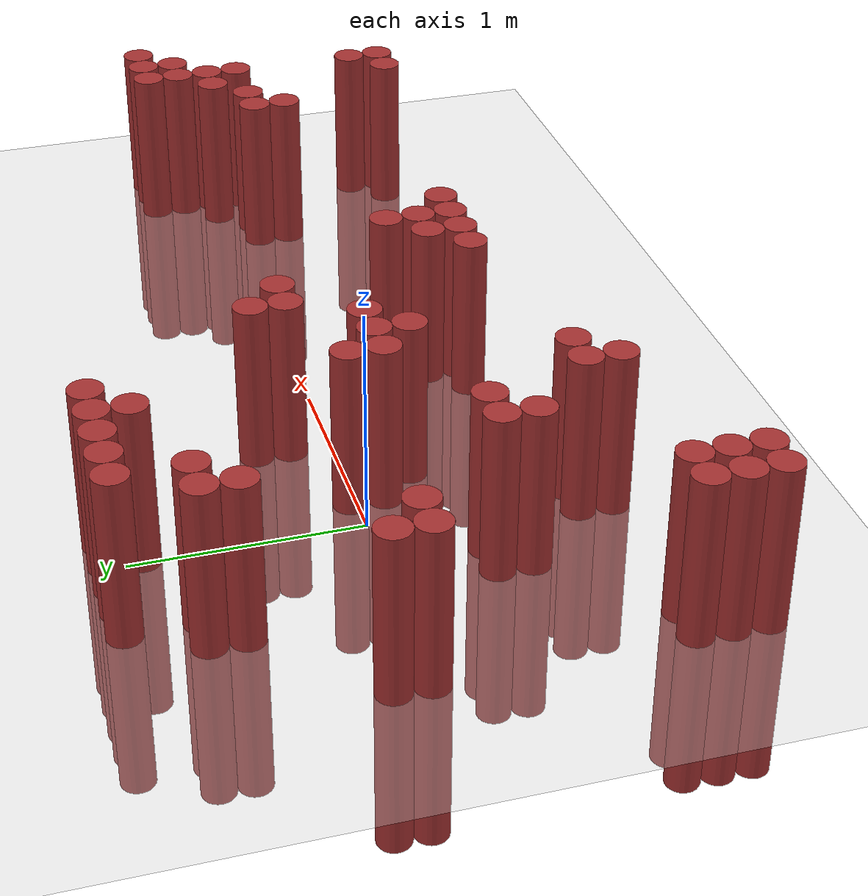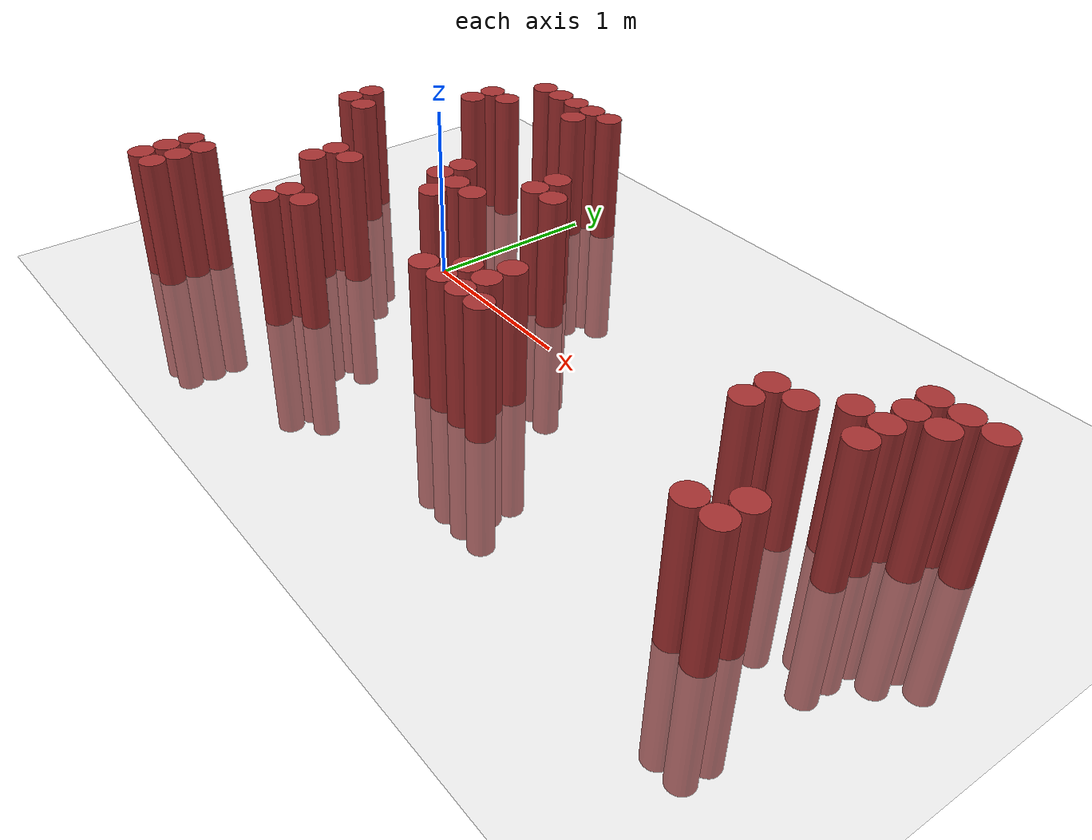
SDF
<sdf version="1.6">
 <world name="default">
  <model name="ground_plane">
   <static>1</static>
   <link name="link">
    <collision name="collision">
     <geometry><plane><normal>0 0 1</normal><size>100 100</size></plane></geometry>
     <surface><friction><ode><mu>100</mu><mu2>50</mu2></ode></friction></surface>
    </collision>
    <visual name="visual">
     <cast_shadows>0</cast_shadows>
     <geometry><plane><normal>0 0 1</normal><size>100 100</size></plane></geometry>
     <material>
      <script><uri>file://media/materials/scripts/gazebo.material</uri><name>Gazebo/Grey</name></script>
     </material>
    </visual>
   </link>
  </model>
  <model name="unit_cylinder_342">
   <static>1</static>
   <pose>-1.025000 -1.325000 0.000000 0.000000 0.000000 0.000000</pose>
   <link name="link">
    <inertial>
     <mass>1</mass>
     <inertia><ixx>0.145833</ixx><ixy>0</ixy><ixz>0</ixz><iyy>0.145833</iyy><iyz>0</iyz><izz>0.125</izz></inertia>
    </inertial>
    <collision name="collision">
     <geometry><cylinder><radius>0.075000</radius><length>1.5</length></cylinder></geometry>
    </collision>
    <visual name="visual">
     <geometry><cylinder><radius>0.075000</radius><length>1.5</length></cylinder></geometry>
     <material>
      <ambient>0.648000 0.192000 0.192000 1</ambient>
      <diffuse>0.648000 0.192000 0.192000 1</diffuse>
     </material>
     <material>
      <script><name>Gazebo/Grey</name><uri>file://media/materials/scripts/gazebo.material</uri></script>
     </material>
    </visual>
   </link>
  </model>
  <model name="unit_cylinder_343">
   <static>1</static>
   <pose>-1.025000 -1.175000 0.000000 0.000000 0.000000 0.000000</pose>
   <link name="link">
    <inertial>
     <mass>1</mass>
     <inertia><ixx>0.145833</ixx><ixy>0</ixy><ixz>0</ixz><iyy>0.145833</iyy><iyz>0</iyz><izz>0.125</izz></inertia>
    </inertial>
    <collision name="collision">
     <geometry><cylinder><radius>0.075000</radius><length>1.5</length></cylinder></geometry>
    </collision>
    <visual name="visual">
     <geometry><cylinder><radius>0.075000</radius><length>1.5</length></cylinder></geometry>
     <material>
      <ambient>0.648000 0.192000 0.192000 1</ambient>
      <diffuse>0.648000 0.192000 0.192000 1</diffuse>
     </material>
     <material>
      <script><name>Gazebo/Grey</name><uri>file://media/materials/scripts/gazebo.material</uri></script>
     </material>
    </visual>
   </link>
  </model>
  <model name="unit_cylinder_344">
   <static>1</static>
   <pose>-1.025000 -1.025000 0.000000 0.000000 0.000000 0.000000</pose>
   <link name="link">
    <inertial>
     <mass>1</mass>
     <inertia><ixx>0.145833</ixx><ixy>0</ixy><ixz>0</ixz><iyy>0.145833</iyy><iyz>0</iyz><izz>0.125</izz></inertia>
    </inertial>
    <collision name="collision">
     <geometry><cylinder><radius>0.075000</radius><length>1.5</length></cylinder></geometry>
    </collision>
    <visual name="visual">
     <geometry><cylinder><radius>0.075000</radius><length>1.5</length></cylinder></geometry>
     <material>
      <ambient>0.648000 0.192000 0.192000 1</ambient>
      <diffuse>0.648000 0.192000 0.192000 1</diffuse>
     </material>
     <material>
      <script><name>Gazebo/Grey</name><uri>file://media/materials/scripts/gazebo.material</uri></script>
     </material>
    </visual>
   </link>
  </model>
  <model name="unit_cylinder_345">
   <static>1</static>
   <pose>-1.025000 0.025000 0.000000 0.000000 0.000000 0.000000</pose>
   <link name="link">
    <inertial>
     <mass>1</mass>
     <inertia><ixx>0.145833</ixx><ixy>0</ixy><ixz>0</ixz><iyy>0.145833</iyy><iyz>0</iyz><izz>0.125</izz></inertia>
    </inertial>
    <collision name="collision">
     <geometry><cylinder><radius>0.075000</radius><length>1.5</length></cylinder></geometry>
    </collision>
    <visual name="visual">
     <geometry><cylinder><radius>0.075000</radius><length>1.5</length></cylinder></geometry>
     <material>
      <ambient>0.648000 0.192000 0.192000 1</ambient>
      <diffuse>0.648000 0.192000 0.192000 1</diffuse>
     </material>
     <material>
      <script><name>Gazebo/Grey</name><uri>file://media/materials/scripts/gazebo.material</uri></script>
     </material>
    </visual>
   </link>
  </model>
  <model name="unit_cylinder_346">
   <static>1</static>
   <pose>-1.025000 0.175000 0.000000 0.000000 0.000000 0.000000</pose>
   <link name="link">
    <inertial>
     <mass>1</mass>
     <inertia><ixx>0.145833</ixx><ixy>0</ixy><ixz>0</ixz><iyy>0.145833</iyy><iyz>0</iyz><izz>0.125</izz></inertia>
    </inertial>
    <collision name="collision">
     <geometry><cylinder><radius>0.075000</radius><length>1.5</length></cylinder></geometry>
    </collision>
    <visual name="visual">
     <geometry><cylinder><radius>0.075000</radius><length>1.5</length></cylinder></geometry>
     <material>
      <ambient>0.648000 0.192000 0.192000 1</ambient>
      <diffuse>0.648000 0.192000 0.192000 1</diffuse>
     </material>
     <material>
      <script><name>Gazebo/Grey</name><uri>file://media/materials/scripts/gazebo.material</uri></script>
     </material>
    </visual>
   </link>
  </model>
  <model name="unit_cylinder_349">
   <static>1</static>
   <pose>-0.875000 -1.325000 0.000000 0.000000 0.000000 0.000000</pose>
   <link name="link">
    <inertial>
     <mass>1</mass>
     <inertia><ixx>0.145833</ixx><ixy>0</ixy><ixz>0</ixz><iyy>0.145833</iyy><iyz>0</iyz><izz>0.125</izz></inertia>
    </inertial>
    <collision name="collision">
     <geometry><cylinder><radius>0.075000</radius><length>1.5</length></cylinder></geometry>
    </collision>
    <visual name="visual">
     <geometry><cylinder><radius>0.075000</radius><length>1.5</length></cylinder></geometry>
     <material>
      <ambient>0.648000 0.192000 0.192000 1</ambient>
      <diffuse>0.648000 0.192000 0.192000 1</diffuse>
     </material>
     <material>
      <script><name>Gazebo/Grey</name><uri>file://media/materials/scripts/gazebo.material</uri></script>
     </material>
    </visual>
   </link>
  </model>
  <model name="unit_cylinder_350">
   <static>1</static>
   <pose>-0.875000 -1.175000 0.000000 0.000000 0.000000 0.000000</pose>
   <link name="link">
    <inertial>
     <mass>1</mass>
     <inertia><ixx>0.145833</ixx><ixy>0</ixy><ixz>0</ixz><iyy>0.145833</iyy><iyz>0</iyz><izz>0.125</izz></inertia>
    </inertial>
    <collision name="collision">
     <geometry><cylinder><radius>0.075000</radius><length>1.5</length></cylinder></geometry>
    </collision>
    <visual name="visual">
     <geometry><cylinder><radius>0.075000</radius><length>1.5</length></cylinder></geometry>
     <material>
      <ambient>0.648000 0.192000 0.192000 1</ambient>
      <diffuse>0.648000 0.192000 0.192000 1</diffuse>
     </material>
     <material>
      <script><name>Gazebo/Grey</name><uri>file://media/materials/scripts/gazebo.material</uri></script>
     </material>
    </visual>
   </link>
  </model>
  <model name="unit_cylinder_351">
   <static>1</static>
   <pose>-0.875000 -1.025000 0.000000 0.000000 0.000000 0.000000</pose>
   <link name="link">
    <inertial>
     <mass>1</mass>
     <inertia><ixx>0.145833</ixx><ixy>0</ixy><ixz>0</ixz><iyy>0.145833</iyy><iyz>0</iyz><izz>0.125</izz></inertia>
    </inertial>
    <collision name="collision">
     <geometry><cylinder><radius>0.075000</radius><length>1.5</length></cylinder></geometry>
    </collision>
    <visual name="visual">
     <geometry><cylinder><radius>0.075000</radius><length>1.5</length></cylinder></geometry>
     <material>
      <ambient>0.648000 0.192000 0.192000 1</ambient>
      <diffuse>0.648000 0.192000 0.192000 1</diffuse>
     </material>
     <material>
      <script><name>Gazebo/Grey</name><uri>file://media/materials/scripts/gazebo.material</uri></script>
     </material>
    </visual>
   </link>
  </model>
  <model name="unit_cylinder_352">
   <static>1</static>
   <pose>-0.875000 0.025000 0.000000 0.000000 0.000000 0.000000</pose>
   <link name="link">
    <inertial>
     <mass>1</mass>
     <inertia><ixx>0.145833</ixx><ixy>0</ixy><ixz>0</ixz><iyy>0.145833</iyy><iyz>0</iyz><izz>0.125</izz></inertia>
    </inertial>
    <collision name="collision">
     <geometry><cylinder><radius>0.075000</radius><length>1.5</length></cylinder></geometry>
    </collision>
    <visual name="visual">
     <geometry><cylinder><radius>0.075000</radius><length>1.5</length></cylinder></geometry>
     <material>
      <ambient>0.648000 0.192000 0.192000 1</ambient>
      <diffuse>0.648000 0.192000 0.192000 1</diffuse>
     </material>
     <material>
      <script><name>Gazebo/Grey</name><uri>file://media/materials/scripts/gazebo.material</uri></script>
     </material>
    </visual>
   </link>
  </model>
  <model name="unit_cylinder_357">
   <static>1</static>
   <pose>-0.575000 0.625000 0.000000 0.000000 0.000000 0.000000</pose>
   <link name="link">
    <inertial>
     <mass>1</mass>
     <inertia><ixx>0.145833</ixx><ixy>0</ixy><ixz>0</ixz><iyy>0.145833</iyy><iyz>0</iyz><izz>0.125</izz></inertia>
    </inertial>
    <collision name="collision">
     <geometry><cylinder><radius>0.075000</radius><length>1.5</length></cylinder></geometry>
    </collision>
    <visual name="visual">
     <geometry><cylinder><radius>0.075000</radius><length>1.5</length></cylinder></geometry>
     <material>
      <ambient>0.648000 0.192000 0.192000 1</ambient>
      <diffuse>0.648000 0.192000 0.192000 1</diffuse>
     </material>
     <material>
      <script><name>Gazebo/Grey</name><uri>file://media/materials/scripts/gazebo.material</uri></script>
     </material>
    </visual>
   </link>
  </model>
  <model name="unit_cylinder_358">
   <static>1</static>
   <pose>-0.575000 0.775000 0.000000 0.000000 0.000000 0.000000</pose>
   <link name="link">
    <inertial>
     <mass>1</mass>
     <inertia><ixx>0.145833</ixx><ixy>0</ixy><ixz>0</ixz><iyy>0.145833</iyy><iyz>0</iyz><izz>0.125</izz></inertia>
    </inertial>
    <collision name="collision">
     <geometry><cylinder><radius>0.075000</radius><length>1.5</length></cylinder></geometry>
    </collision>
    <visual name="visual">
     <geometry><cylinder><radius>0.075000</radius><length>1.5</length></cylinder></geometry>
     <material>
      <ambient>0.648000 0.192000 0.192000 1</ambient>
      <diffuse>0.648000 0.192000 0.192000 1</diffuse>
     </material>
     <material>
      <script><name>Gazebo/Grey</name><uri>file://media/materials/scripts/gazebo.material</uri></script>
     </material>
    </visual>
   </link>
  </model>
  <model name="unit_cylinder_363">
   <static>1</static>
   <pose>-0.425000 -0.575000 0.000000 0.000000 0.000000 0.000000</pose>
   <link name="link">
    <inertial>
     <mass>1</mass>
     <inertia><ixx>0.145833</ixx><ixy>0</ixy><ixz>0</ixz><iyy>0.145833</iyy><iyz>0</iyz><izz>0.125</izz></inertia>
    </inertial>
    <collision name="collision">
     <geometry><cylinder><radius>0.075000</radius><length>1.5</length></cylinder></geometry>
    </collision>
    <visual name="visual">
     <geometry><cylinder><radius>0.075000</radius><length>1.5</length></cylinder></geometry>
     <material>
      <ambient>0.648000 0.192000 0.192000 1</ambient>
      <diffuse>0.648000 0.192000 0.192000 1</diffuse>
     </material>
     <material>
      <script><name>Gazebo/Grey</name><uri>file://media/materials/scripts/gazebo.material</uri></script>
     </material>
    </visual>
   </link>
  </model>
  <model name="unit_cylinder_364">
   <static>1</static>
   <pose>-0.425000 -0.425000 0.000000 0.000000 0.000000 0.000000</pose>
   <link name="link">
    <inertial>
     <mass>1</mass>
     <inertia><ixx>0.145833</ixx><ixy>0</ixy><ixz>0</ixz><iyy>0.145833</iyy><iyz>0</iyz><izz>0.125</izz></inertia>
    </inertial>
    <collision name="collision">
     <geometry><cylinder><radius>0.075000</radius><length>1.5</length></cylinder></geometry>
    </collision>
    <visual name="visual">
     <geometry><cylinder><radius>0.075000</radius><length>1.5</length></cylinder></geometry>
     <material>
      <ambient>0.648000 0.192000 0.192000 1</ambient>
      <diffuse>0.648000 0.192000 0.192000 1</diffuse>
     </material>
     <material>
      <script><name>Gazebo/Grey</name><uri>file://media/materials/scripts/gazebo.material</uri></script>
     </material>
    </visual>
   </link>
  </model>
  <model name="unit_cylinder_365">
   <static>1</static>
   <pose>-0.425000 0.775000 0.000000 0.000000 0.000000 0.000000</pose>
   <link name="link">
    <inertial>
     <mass>1</mass>
     <inertia><ixx>0.145833</ixx><ixy>0</ixy><ixz>0</ixz><iyy>0.145833</iyy><iyz>0</iyz><izz>0.125</izz></inertia>
    </inertial>
    <collision name="collision">
     <geometry><cylinder><radius>0.075000</radius><length>1.5</length></cylinder></geometry>
    </collision>
    <visual name="visual">
     <geometry><cylinder><radius>0.075000</radius><length>1.5</length></cylinder></geometry>
     <material>
      <ambient>0.648000 0.192000 0.192000 1</ambient>
      <diffuse>0.648000 0.192000 0.192000 1</diffuse>
     </material>
     <material>
      <script><name>Gazebo/Grey</name><uri>file://media/materials/scripts/gazebo.material</uri></script>
     </material>
    </visual>
   </link>
  </model>
  <model name="unit_cylinder_366">
   <static>1</static>
   <pose>-0.425000 1.075000 0.000000 0.000000 0.000000 0.000000</pose>
   <link name="link">
    <inertial>
     <mass>1</mass>
     <inertia><ixx>0.145833</ixx><ixy>0</ixy><ixz>0</ixz><iyy>0.145833</iyy><iyz>0</iyz><izz>0.125</izz></inertia>
    </inertial>
    <collision name="collision">
     <geometry><cylinder><radius>0.075000</radius><length>1.5</length></cylinder></geometry>
    </collision>
    <visual name="visual">
     <geometry><cylinder><radius>0.075000</radius><length>1.5</length></cylinder></geometry>
     <material>
      <ambient>0.648000 0.192000 0.192000 1</ambient>
      <diffuse>0.648000 0.192000 0.192000 1</diffuse>
     </material>
     <material>
      <script><name>Gazebo/Grey</name><uri>file://media/materials/scripts/gazebo.material</uri></script>
     </material>
    </visual>
   </link>
  </model>
  <model name="unit_cylinder_376">
   <static>1</static>
   <pose>-0.275000 -0.425000 0.000000 0.000000 0.000000 0.000000</pose>
   <link name="link">
    <inertial>
     <mass>1</mass>
     <inertia><ixx>0.145833</ixx><ixy>0</ixy><ixz>0</ixz><iyy>0.145833</iyy><iyz>0</iyz><izz>0.125</izz></inertia>
    </inertial>
    <collision name="collision">
     <geometry><cylinder><radius>0.075000</radius><length>1.5</length></cylinder></geometry>
    </collision>
    <visual name="visual">
     <geometry><cylinder><radius>0.075000</radius><length>1.5</length></cylinder></geometry>
     <material>
      <ambient>0.648000 0.192000 0.192000 1</ambient>
      <diffuse>0.648000 0.192000 0.192000 1</diffuse>
     </material>
     <material>
      <script><name>Gazebo/Grey</name><uri>file://media/materials/scripts/gazebo.material</uri></script>
     </material>
    </visual>
   </link>
  </model>
  <model name="unit_cylinder_377">
   <static>1</static>
   <pose>-0.275000 1.075000 0.000000 0.000000 0.000000 0.000000</pose>
   <link name="link">
    <inertial>
     <mass>1</mass>
     <inertia><ixx>0.145833</ixx><ixy>0</ixy><ixz>0</ixz><iyy>0.145833</iyy><iyz>0</iyz><izz>0.125</izz></inertia>
    </inertial>
    <collision name="collision">
     <geometry><cylinder><radius>0.075000</radius><length>1.5</length></cylinder></geometry>
    </collision>
    <visual name="visual">
     <geometry><cylinder><radius>0.075000</radius><length>1.5</length></cylinder></geometry>
     <material>
      <ambient>0.648000 0.192000 0.192000 1</ambient>
      <diffuse>0.648000 0.192000 0.192000 1</diffuse>
     </material>
     <material>
      <script><name>Gazebo/Grey</name><uri>file://media/materials/scripts/gazebo.material</uri></script>
     </material>
    </visual>
   </link>
  </model>
  <model name="unit_cylinder_384">
   <static>1</static>
   <pose>-0.125000 -1.025000 0.000000 0.000000 0.000000 0.000000</pose>
   <link name="link">
    <inertial>
     <mass>1</mass>
     <inertia><ixx>0.145833</ixx><ixy>0</ixy><ixz>0</ixz><iyy>0.145833</iyy><iyz>0</iyz><izz>0.125</izz></inertia>
    </inertial>
    <collision name="collision">
     <geometry><cylinder><radius>0.075000</radius><length>1.5</length></cylinder></geometry>
    </collision>
    <visual name="visual">
     <geometry><cylinder><radius>0.075000</radius><length>1.5</length></cylinder></geometry>
     <material>
      <ambient>0.648000 0.192000 0.192000 1</ambient>
      <diffuse>0.648000 0.192000 0.192000 1</diffuse>
     </material>
     <material>
      <script><name>Gazebo/Grey</name><uri>file://media/materials/scripts/gazebo.material</uri></script>
     </material>
    </visual>
   </link>
  </model>
  <model name="unit_cylinder_385">
   <static>1</static>
   <pose>-0.125000 -0.875000 0.000000 0.000000 0.000000 0.000000</pose>
   <link name="link">
    <inertial>
     <mass>1</mass>
     <inertia><ixx>0.145833</ixx><ixy>0</ixy><ixz>0</ixz><iyy>0.145833</iyy><iyz>0</iyz><izz>0.125</izz></inertia>
    </inertial>
    <collision name="collision">
     <geometry><cylinder><radius>0.075000</radius><length>1.5</length></cylinder></geometry>
    </collision>
    <visual name="visual">
     <geometry><cylinder><radius>0.075000</radius><length>1.5</length></cylinder></geometry>
     <material>
      <ambient>0.648000 0.192000 0.192000 1</ambient>
      <diffuse>0.648000 0.192000 0.192000 1</diffuse>
     </material>
     <material>
      <script><name>Gazebo/Grey</name><uri>file://media/materials/scripts/gazebo.material</uri></script>
     </material>
    </visual>
   </link>
  </model>
  <model name="unit_cylinder_386">
   <static>1</static>
   <pose>-0.125000 1.075000 0.000000 0.000000 0.000000 0.000000</pose>
   <link name="link">
    <inertial>
     <mass>1</mass>
     <inertia><ixx>0.145833</ixx><ixy>0</ixy><ixz>0</ixz><iyy>0.145833</iyy><iyz>0</iyz><izz>0.125</izz></inertia>
    </inertial>
    <collision name="collision">
     <geometry><cylinder><radius>0.075000</radius><length>1.5</length></cylinder></geometry>
    </collision>
    <visual name="visual">
     <geometry><cylinder><radius>0.075000</radius><length>1.5</length></cylinder></geometry>
     <material>
      <ambient>0.648000 0.192000 0.192000 1</ambient>
      <diffuse>0.648000 0.192000 0.192000 1</diffuse>
     </material>
     <material>
      <script><name>Gazebo/Grey</name><uri>file://media/materials/scripts/gazebo.material</uri></script>
     </material>
    </visual>
   </link>
  </model>
  <model name="unit_cylinder_390">
   <static>1</static>
   <pose>0.025000 -0.875000 0.000000 0.000000 0.000000 0.000000</pose>
   <link name="link">
    <inertial>
     <mass>1</mass>
     <inertia><ixx>0.145833</ixx><ixy>0</ixy><ixz>0</ixz><iyy>0.145833</iyy><iyz>0</iyz><izz>0.125</izz></inertia>
    </inertial>
    <collision name="collision">
     <geometry><cylinder><radius>0.075000</radius><length>1.5</length></cylinder></geometry>
    </collision>
    <visual name="visual">
     <geometry><cylinder><radius>0.075000</radius><length>1.5</length></cylinder></geometry>
     <material>
      <ambient>0.648000 0.192000 0.192000 1</ambient>
      <diffuse>0.648000 0.192000 0.192000 1</diffuse>
     </material>
     <material>
      <script><name>Gazebo/Grey</name><uri>file://media/materials/scripts/gazebo.material</uri></script>
     </material>
    </visual>
   </link>
  </model>
  <model name="unit_cylinder_391">
   <static>1</static>
   <pose>0.025000 0.925000 0.000000 0.000000 0.000000 0.000000</pose>
   <link name="link">
    <inertial>
     <mass>1</mass>
     <inertia><ixx>0.145833</ixx><ixy>0</ixy><ixz>0</ixz><iyy>0.145833</iyy><iyz>0</iyz><izz>0.125</izz></inertia>
    </inertial>
    <collision name="collision">
     <geometry><cylinder><radius>0.075000</radius><length>1.5</length></cylinder></geometry>
    </collision>
    <visual name="visual">
     <geometry><cylinder><radius>0.075000</radius><length>1.5</length></cylinder></geometry>
     <material>
      <ambient>0.648000 0.192000 0.192000 1</ambient>
      <diffuse>0.648000 0.192000 0.192000 1</diffuse>
     </material>
     <material>
      <script><name>Gazebo/Grey</name><uri>file://media/materials/scripts/gazebo.material</uri></script>
     </material>
    </visual>
   </link>
  </model>
  <model name="unit_cylinder_392">
   <static>1</static>
   <pose>0.025000 1.075000 0.000000 0.000000 0.000000 0.000000</pose>
   <link name="link">
    <inertial>
     <mass>1</mass>
     <inertia><ixx>0.145833</ixx><ixy>0</ixy><ixz>0</ixz><iyy>0.145833</iyy><iyz>0</iyz><izz>0.125</izz></inertia>
    </inertial>
    <collision name="collision">
     <geometry><cylinder><radius>0.075000</radius><length>1.5</length></cylinder></geometry>
    </collision>
    <visual name="visual">
     <geometry><cylinder><radius>0.075000</radius><length>1.5</length></cylinder></geometry>
     <material>
      <ambient>0.648000 0.192000 0.192000 1</ambient>
      <diffuse>0.648000 0.192000 0.192000 1</diffuse>
     </material>
     <material>
      <script><name>Gazebo/Grey</name><uri>file://media/materials/scripts/gazebo.material</uri></script>
     </material>
    </visual>
   </link>
  </model>
  <model name="unit_cylinder_396">
   <static>1</static>
   <pose>0.175000 -0.125000 0.000000 0.000000 0.000000 0.000000</pose>
   <link name="link">
    <inertial>
     <mass>1</mass>
     <inertia><ixx>0.145833</ixx><ixy>0</ixy><ixz>0</ixz><iyy>0.145833</iyy><iyz>0</iyz><izz>0.125</izz></inertia>
    </inertial>
    <collision name="collision">
     <geometry><cylinder><radius>0.075000</radius><length>1.5</length></cylinder></geometry>
    </collision>
    <visual name="visual">
     <geometry><cylinder><radius>0.075000</radius><length>1.5</length></cylinder></geometry>
     <material>
      <ambient>0.648000 0.192000 0.192000 1</ambient>
      <diffuse>0.648000 0.192000 0.192000 1</diffuse>
     </material>
     <material>
      <script><name>Gazebo/Grey</name><uri>file://media/materials/scripts/gazebo.material</uri></script>
     </material>
    </visual>
   </link>
  </model>
  <model name="unit_cylinder_397">
   <static>1</static>
   <pose>0.175000 0.025000 0.000000 0.000000 0.000000 0.000000</pose>
   <link name="link">
    <inertial>
     <mass>1</mass>
     <inertia><ixx>0.145833</ixx><ixy>0</ixy><ixz>0</ixz><iyy>0.145833</iyy><iyz>0</iyz><izz>0.125</izz></inertia>
    </inertial>
    <collision name="collision">
     <geometry><cylinder><radius>0.075000</radius><length>1.5</length></cylinder></geometry>
    </collision>
    <visual name="visual">
     <geometry><cylinder><radius>0.075000</radius><length>1.5</length></cylinder></geometry>
     <material>
      <ambient>0.648000 0.192000 0.192000 1</ambient>
      <diffuse>0.648000 0.192000 0.192000 1</diffuse>
     </material>
     <material>
      <script><name>Gazebo/Grey</name><uri>file://media/materials/scripts/gazebo.material</uri></script>
     </material>
    </visual>
   </link>
  </model>
  <model name="unit_cylinder_398">
   <static>1</static>
   <pose>0.175000 1.075000 0.000000 0.000000 0.000000 0.000000</pose>
   <link name="link">
    <inertial>
     <mass>1</mass>
     <inertia><ixx>0.145833</ixx><ixy>0</ixy><ixz>0</ixz><iyy>0.145833</iyy><iyz>0</iyz><izz>0.125</izz></inertia>
    </inertial>
    <collision name="collision">
     <geometry><cylinder><radius>0.075000</radius><length>1.5</length></cylinder></geometry>
    </collision>
    <visual name="visual">
     <geometry><cylinder><radius>0.075000</radius><length>1.5</length></cylinder></geometry>
     <material>
      <ambient>0.648000 0.192000 0.192000 1</ambient>
      <diffuse>0.648000 0.192000 0.192000 1</diffuse>
     </material>
     <material>
      <script><name>Gazebo/Grey</name><uri>file://media/materials/scripts/gazebo.material</uri></script>
     </material>
    </visual>
   </link>
  </model>
  <model name="unit_cylinder_401">
   <static>1</static>
   <pose>0.325000 -0.275000 0.000000 0.000000 0.000000 0.000000</pose>
   <link name="link">
    <inertial>
     <mass>1</mass>
     <inertia><ixx>0.145833</ixx><ixy>0</ixy><ixz>0</ixz><iyy>0.145833</iyy><iyz>0</iyz><izz>0.125</izz></inertia>
    </inertial>
    <collision name="collision">
     <geometry><cylinder><radius>0.075000</radius><length>1.5</length></cylinder></geometry>
    </collision>
    <visual name="visual">
     <geometry><cylinder><radius>0.075000</radius><length>1.5</length></cylinder></geometry>
     <material>
      <ambient>0.648000 0.192000 0.192000 1</ambient>
      <diffuse>0.648000 0.192000 0.192000 1</diffuse>
     </material>
     <material>
      <script><name>Gazebo/Grey</name><uri>file://media/materials/scripts/gazebo.material</uri></script>
     </material>
    </visual>
   </link>
  </model>
  <model name="unit_cylinder_402">
   <static>1</static>
   <pose>0.325000 -0.125000 0.000000 0.000000 0.000000 0.000000</pose>
   <link name="link">
    <inertial>
     <mass>1</mass>
     <inertia><ixx>0.145833</ixx><ixy>0</ixy><ixz>0</ixz><iyy>0.145833</iyy><iyz>0</iyz><izz>0.125</izz></inertia>
    </inertial>
    <collision name="collision">
     <geometry><cylinder><radius>0.075000</radius><length>1.5</length></cylinder></geometry>
    </collision>
    <visual name="visual">
     <geometry><cylinder><radius>0.075000</radius><length>1.5</length></cylinder></geometry>
     <material>
      <ambient>0.648000 0.192000 0.192000 1</ambient>
      <diffuse>0.648000 0.192000 0.192000 1</diffuse>
     </material>
     <material>
      <script><name>Gazebo/Grey</name><uri>file://media/materials/scripts/gazebo.material</uri></script>
     </material>
    </visual>
   </link>
  </model>
  <model name="unit_cylinder_407">
   <static>1</static>
   <pose>0.475000 -0.125000 0.000000 0.000000 0.000000 0.000000</pose>
   <link name="link">
    <inertial>
     <mass>1</mass>
     <inertia><ixx>0.145833</ixx><ixy>0</ixy><ixz>0</ixz><iyy>0.145833</iyy><iyz>0</iyz><izz>0.125</izz></inertia>
    </inertial>
    <collision name="collision">
     <geometry><cylinder><radius>0.075000</radius><length>1.5</length></cylinder></geometry>
    </collision>
    <visual name="visual">
     <geometry><cylinder><radius>0.075000</radius><length>1.5</length></cylinder></geometry>
     <material>
      <ambient>0.648000 0.192000 0.192000 1</ambient>
      <diffuse>0.648000 0.192000 0.192000 1</diffuse>
     </material>
     <material>
      <script><name>Gazebo/Grey</name><uri>file://media/materials/scripts/gazebo.material</uri></script>
     </material>
    </visual>
   </link>
  </model>
  <model name="unit_cylinder_409">
   <static>1</static>
   <pose>0.625000 0.175000 0.000000 0.000000 0.000000 0.000000</pose>
   <link name="link">
    <inertial>
     <mass>1</mass>
     <inertia><ixx>0.145833</ixx><ixy>0</ixy><ixz>0</ixz><iyy>0.145833</iyy><iyz>0</iyz><izz>0.125</izz></inertia>
    </inertial>
    <collision name="collision">
     <geometry><cylinder><radius>0.075000</radius><length>1.5</length></cylinder></geometry>
    </collision>
    <visual name="visual">
     <geometry><cylinder><radius>0.075000</radius><length>1.5</length></cylinder></geometry>
     <material>
      <ambient>0.648000 0.192000 0.192000 1</ambient>
      <diffuse>0.648000 0.192000 0.192000 1</diffuse>
     </material>
     <material>
      <script><name>Gazebo/Grey</name><uri>file://media/materials/scripts/gazebo.material</uri></script>
     </material>
    </visual>
   </link>
  </model>
  <model name="unit_cylinder_410">
   <static>1</static>
   <pose>0.625000 0.325000 0.000000 0.000000 0.000000 0.000000</pose>
   <link name="link">
    <inertial>
     <mass>1</mass>
     <inertia><ixx>0.145833</ixx><ixy>0</ixy><ixz>0</ixz><iyy>0.145833</iyy><iyz>0</iyz><izz>0.125</izz></inertia>
    </inertial>
    <collision name="collision">
     <geometry><cylinder><radius>0.075000</radius><length>1.5</length></cylinder></geometry>
    </collision>
    <visual name="visual">
     <geometry><cylinder><radius>0.075000</radius><length>1.5</length></cylinder></geometry>
     <material>
      <ambient>0.648000 0.192000 0.192000 1</ambient>
      <diffuse>0.648000 0.192000 0.192000 1</diffuse>
     </material>
     <material>
      <script><name>Gazebo/Grey</name><uri>file://media/materials/scripts/gazebo.material</uri></script>
     </material>
    </visual>
   </link>
  </model>
  <model name="unit_cylinder_411">
   <static>1</static>
   <pose>0.775000 0.175000 0.000000 0.000000 0.000000 0.000000</pose>
   <link name="link">
    <inertial>
     <mass>1</mass>
     <inertia><ixx>0.145833</ixx><ixy>0</ixy><ixz>0</ixz><iyy>0.145833</iyy><iyz>0</iyz><izz>0.125</izz></inertia>
    </inertial>
    <collision name="collision">
     <geometry><cylinder><radius>0.075000</radius><length>1.5</length></cylinder></geometry>
    </collision>
    <visual name="visual">
     <geometry><cylinder><radius>0.075000</radius><length>1.5</length></cylinder></geometry>
     <material>
      <ambient>0.648000 0.192000 0.192000 1</ambient>
      <diffuse>0.648000 0.192000 0.192000 1</diffuse>
     </material>
     <material>
      <script><name>Gazebo/Grey</name><uri>file://media/materials/scripts/gazebo.material</uri></script>
     </material>
    </visual>
   </link>
  </model>
  <model name="unit_cylinder_412">
   <static>1</static>
   <pose>0.925000 -0.725000 0.000000 0.000000 0.000000 0.000000</pose>
   <link name="link">
    <inertial>
     <mass>1</mass>
     <inertia><ixx>0.145833</ixx><ixy>0</ixy><ixz>0</ixz><iyy>0.145833</iyy><iyz>0</iyz><izz>0.125</izz></inertia>
    </inertial>
    <collision name="collision">
     <geometry><cylinder><radius>0.075000</radius><length>1.5</length></cylinder></geometry>
    </collision>
    <visual name="visual">
     <geometry><cylinder><radius>0.075000</radius><length>1.5</length></cylinder></geometry>
     <material>
      <ambient>0.648000 0.192000 0.192000 1</ambient>
      <diffuse>0.648000 0.192000 0.192000 1</diffuse>
     </material>
     <material>
      <script><name>Gazebo/Grey</name><uri>file://media/materials/scripts/gazebo.material</uri></script>
     </material>
    </visual>
   </link>
  </model>
  <model name="unit_cylinder_413">
   <static>1</static>
   <pose>1.075000 -0.725000 0.000000 0.000000 0.000000 0.000000</pose>
   <link name="link">
    <inertial>
     <mass>1</mass>
     <inertia><ixx>0.145833</ixx><ixy>0</ixy><ixz>0</ixz><iyy>0.145833</iyy><iyz>0</iyz><izz>0.125</izz></inertia>
    </inertial>
    <collision name="collision">
     <geometry><cylinder><radius>0.075000</radius><length>1.5</length></cylinder></geometry>
    </collision>
    <visual name="visual">
     <geometry><cylinder><radius>0.075000</radius><length>1.5</length></cylinder></geometry>
     <material>
      <ambient>0.648000 0.192000 0.192000 1</ambient>
      <diffuse>0.648000 0.192000 0.192000 1</diffuse>
     </material>
     <material>
      <script><name>Gazebo/Grey</name><uri>file://media/materials/scripts/gazebo.material</uri></script>
     </material>
    </visual>
   </link>
  </model>
  <model name="unit_cylinder_414">
   <static>1</static>
   <pose>1.075000 -0.575000 0.000000 0.000000 0.000000 0.000000</pose>
   <link name="link">
    <inertial>
     <mass>1</mass>
     <inertia><ixx>0.145833</ixx><ixy>0</ixy><ixz>0</ixz><iyy>0.145833</iyy><iyz>0</iyz><izz>0.125</izz></inertia>
    </inertial>
    <collision name="collision">
     <geometry><cylinder><radius>0.075000</radius><length>1.5</length></cylinder></geometry>
    </collision>
    <visual name="visual">
     <geometry><cylinder><radius>0.075000</radius><length>1.5</length></cylinder></geometry>
     <material>
      <ambient>0.648000 0.192000 0.192000 1</ambient>
      <diffuse>0.648000 0.192000 0.192000 1</diffuse>
     </material>
     <material>
      <script><name>Gazebo/Grey</name><uri>file://media/materials/scripts/gazebo.material</uri></script>
     </material>
    </visual>
   </link>
  </model>
  <model name="unit_cylinder_415">
   <static>1</static>
   <pose>1.225000 -0.725000 0.000000 0.000000 0.000000 0.000000</pose>
   <link name="link">
    <inertial>
     <mass>1</mass>
     <inertia><ixx>0.145833</ixx><ixy>0</ixy><ixz>0</ixz><iyy>0.145833</iyy><iyz>0</iyz><izz>0.125</izz></inertia>
    </inertial>
    <collision name="collision">
     <geometry><cylinder><radius>0.075000</radius><length>1.5</length></cylinder></geometry>
    </collision>
    <visual name="visual">
     <geometry><cylinder><radius>0.075000</radius><length>1.5</length></cylinder></geometry>
     <material>
      <ambient>0.648000 0.192000 0.192000 1</ambient>
      <diffuse>0.648000 0.192000 0.192000 1</diffuse>
     </material>
     <material>
      <script><name>Gazebo/Grey</name><uri>file://media/materials/scripts/gazebo.material</uri></script>
     </material>
    </visual>
   </link>
  </model>
  <model name="unit_cylinder_416">
   <static>1</static>
   <pose>1.225000 -0.575000 0.000000 0.000000 0.000000 0.000000</pose>
   <link name="link">
    <inertial>
     <mass>1</mass>
     <inertia><ixx>0.145833</ixx><ixy>0</ixy><ixz>0</ixz><iyy>0.145833</iyy><iyz>0</iyz><izz>0.125</izz></inertia>
    </inertial>
    <collision name="collision">
     <geometry><cylinder><radius>0.075000</radius><length>1.5</length></cylinder></geometry>
    </collision>
    <visual name="visual">
     <geometry><cylinder><radius>0.075000</radius><length>1.5</length></cylinder></geometry>
     <material>
      <ambient>0.648000 0.192000 0.192000 1</ambient>
      <diffuse>0.648000 0.192000 0.192000 1</diffuse>
     </material>
     <material>
      <script><name>Gazebo/Grey</name><uri>file://media/materials/scripts/gazebo.material</uri></script>
     </material>
    </visual>
   </link>
  </model>
  <model name="unit_cylinder_417">
   <static>1</static>
   <pose>1.225000 -0.425000 0.000000 0.000000 0.000000 0.000000</pose>
   <link name="link">
    <inertial>
     <mass>1</mass>
     <inertia><ixx>0.145833</ixx><ixy>0</ixy><ixz>0</ixz><iyy>0.145833</iyy><iyz>0</iyz><izz>0.125</izz></inertia>
    </inertial>
    <collision name="collision">
     <geometry><cylinder><radius>0.075000</radius><length>1.5</length></cylinder></geometry>
    </collision>
    <visual name="visual">
     <geometry><cylinder><radius>0.075000</radius><length>1.5</length></cylinder></geometry>
     <material>
      <ambient>0.648000 0.192000 0.192000 1</ambient>
      <diffuse>0.648000 0.192000 0.192000 1</diffuse>
     </material>
     <material>
      <script><name>Gazebo/Grey</name><uri>file://media/materials/scripts/gazebo.material</uri></script>
     </material>
    </visual>
   </link>
  </model>
  <model name="unit_cylinder_419">
   <static>1</static>
   <pose>1.375000 -0.725000 0.000000 0.000000 0.000000 0.000000</pose>
   <link name="link">
    <inertial>
     <mass>1</mass>
     <inertia><ixx>0.145833</ixx><ixy>0</ixy><ixz>0</ixz><iyy>0.145833</iyy><iyz>0</iyz><izz>0.125</izz></inertia>
    </inertial>
    <collision name="collision">
     <geometry><cylinder><radius>0.075000</radius><length>1.5</length></cylinder></geometry>
    </collision>
    <visual name="visual">
     <geometry><cylinder><radius>0.075000</radius><length>1.5</length></cylinder></geometry>
     <material>
      <ambient>0.648000 0.192000 0.192000 1</ambient>
      <diffuse>0.648000 0.192000 0.192000 1</diffuse>
     </material>
     <material>
      <script><name>Gazebo/Grey</name><uri>file://media/materials/scripts/gazebo.material</uri></script>
     </material>
    </visual>
   </link>
  </model>
  <model name="unit_cylinder_439">
   <static>1</static>
   <pose>2.575000 -0.275000 0.000000 0.000000 0.000000 0.000000</pose>
   <link name="link">
    <inertial>
     <mass>1</mass>
     <inertia><ixx>0.145833</ixx><ixy>0</ixy><ixz>0</ixz><iyy>0.145833</iyy><iyz>0</iyz><izz>0.125</izz></inertia>
    </inertial>
    <collision name="collision">
     <geometry><cylinder><radius>0.075000</radius><length>1.5</length></cylinder></geometry>
    </collision>
    <visual name="visual">
     <geometry><cylinder><radius>0.075000</radius><length>1.5</length></cylinder></geometry>
     <material>
      <ambient>0.648000 0.192000 0.192000 1</ambient>
      <diffuse>0.648000 0.192000 0.192000 1</diffuse>
     </material>
     <material>
      <script><name>Gazebo/Grey</name><uri>file://media/materials/scripts/gazebo.material</uri></script>
     </material>
    </visual>
   </link>
  </model>
  <model name="unit_cylinder_440">
   <static>1</static>
   <pose>2.575000 -0.125000 0.000000 0.000000 0.000000 0.000000</pose>
   <link name="link">
    <inertial>
     <mass>1</mass>
     <inertia><ixx>0.145833</ixx><ixy>0</ixy><ixz>0</ixz><iyy>0.145833</iyy><iyz>0</iyz><izz>0.125</izz></inertia>
    </inertial>
    <collision name="collision">
     <geometry><cylinder><radius>0.075000</radius><length>1.5</length></cylinder></geometry>
    </collision>
    <visual name="visual">
     <geometry><cylinder><radius>0.075000</radius><length>1.5</length></cylinder></geometry>
     <material>
      <ambient>0.648000 0.192000 0.192000 1</ambient>
      <diffuse>0.648000 0.192000 0.192000 1</diffuse>
     </material>
     <material>
      <script><name>Gazebo/Grey</name><uri>file://media/materials/scripts/gazebo.material</uri></script>
     </material>
    </visual>
   </link>
  </model>
  <model name="unit_cylinder_443">
   <static>1</static>
   <pose>2.725000 -0.125000 0.000000 0.000000 0.000000 0.000000</pose>
   <link name="link">
    <inertial>
     <mass>1</mass>
     <inertia><ixx>0.145833</ixx><ixy>0</ixy><ixz>0</ixz><iyy>0.145833</iyy><iyz>0</iyz><izz>0.125</izz></inertia>
    </inertial>
    <collision name="collision">
     <geometry><cylinder><radius>0.075000</radius><length>1.5</length></cylinder></geometry>
    </collision>
    <visual name="visual">
     <geometry><cylinder><radius>0.075000</radius><length>1.5</length></cylinder></geometry>
     <material>
      <ambient>0.648000 0.192000 0.192000 1</ambient>
      <diffuse>0.648000 0.192000 0.192000 1</diffuse>
     </material>
     <material>
      <script><name>Gazebo/Grey</name><uri>file://media/materials/scripts/gazebo.material</uri></script>
     </material>
    </visual>
   </link>
  </model>
  <model name="unit_cylinder_446">
   <static>1</static>
   <pose>2.875000 -0.875000 0.000000 0.000000 0.000000 0.000000</pose>
   <link name="link">
    <inertial>
     <mass>1</mass>
     <inertia><ixx>0.145833</ixx><ixy>0</ixy><ixz>0</ixz><iyy>0.145833</iyy><iyz>0</iyz><izz>0.125</izz></inertia>
    </inertial>
    <collision name="collision">
     <geometry><cylinder><radius>0.075000</radius><length>1.5</length></cylinder></geometry>
    </collision>
    <visual name="visual">
     <geometry><cylinder><radius>0.075000</radius><length>1.5</length></cylinder></geometry>
     <material>
      <ambient>0.648000 0.192000 0.192000 1</ambient>
      <diffuse>0.648000 0.192000 0.192000 1</diffuse>
     </material>
     <material>
      <script><name>Gazebo/Grey</name><uri>file://media/materials/scripts/gazebo.material</uri></script>
     </material>
    </visual>
   </link>
  </model>
  <model name="unit_cylinder_447">
   <static>1</static>
   <pose>2.875000 0.025000 0.000000 0.000000 0.000000 0.000000</pose>
   <link name="link">
    <inertial>
     <mass>1</mass>
     <inertia><ixx>0.145833</ixx><ixy>0</ixy><ixz>0</ixz><iyy>0.145833</iyy><iyz>0</iyz><izz>0.125</izz></inertia>
    </inertial>
    <collision name="collision">
     <geometry><cylinder><radius>0.075000</radius><length>1.5</length></cylinder></geometry>
    </collision>
    <visual name="visual">
     <geometry><cylinder><radius>0.075000</radius><length>1.5</length></cylinder></geometry>
     <material>
      <ambient>0.648000 0.192000 0.192000 1</ambient>
      <diffuse>0.648000 0.192000 0.192000 1</diffuse>
     </material>
     <material>
      <script><name>Gazebo/Grey</name><uri>file://media/materials/scripts/gazebo.material</uri></script>
     </material>
    </visual>
   </link>
  </model>
  <model name="unit_cylinder_449">
   <static>1</static>
   <pose>3.025000 -0.875000 0.000000 0.000000 0.000000 0.000000</pose>
   <link name="link">
    <inertial>
     <mass>1</mass>
     <inertia><ixx>0.145833</ixx><ixy>0</ixy><ixz>0</ixz><iyy>0.145833</iyy><iyz>0</iyz><izz>0.125</izz></inertia>
    </inertial>
    <collision name="collision">
     <geometry><cylinder><radius>0.075000</radius><length>1.5</length></cylinder></geometry>
    </collision>
    <visual name="visual">
     <geometry><cylinder><radius>0.075000</radius><length>1.5</length></cylinder></geometry>
     <material>
      <ambient>0.648000 0.192000 0.192000 1</ambient>
      <diffuse>0.648000 0.192000 0.192000 1</diffuse>
     </material>
     <material>
      <script><name>Gazebo/Grey</name><uri>file://media/materials/scripts/gazebo.material</uri></script>
     </material>
    </visual>
   </link>
  </model>
  <model name="unit_cylinder_450">
   <static>1</static>
   <pose>3.025000 -0.725000 0.000000 0.000000 0.000000 0.000000</pose>
   <link name="link">
    <inertial>
     <mass>1</mass>
     <inertia><ixx>0.145833</ixx><ixy>0</ixy><ixz>0</ixz><iyy>0.145833</iyy><iyz>0</iyz><izz>0.125</izz></inertia>
    </inertial>
    <collision name="collision">
     <geometry><cylinder><radius>0.075000</radius><length>1.5</length></cylinder></geometry>
    </collision>
    <visual name="visual">
     <geometry><cylinder><radius>0.075000</radius><length>1.5</length></cylinder></geometry>
     <material>
      <ambient>0.648000 0.192000 0.192000 1</ambient>
      <diffuse>0.648000 0.192000 0.192000 1</diffuse>
     </material>
     <material>
      <script><name>Gazebo/Grey</name><uri>file://media/materials/scripts/gazebo.material</uri></script>
     </material>
    </visual>
   </link>
  </model>
  <model name="unit_cylinder_451">
   <static>1</static>
   <pose>3.025000 -0.125000 0.000000 0.000000 0.000000 0.000000</pose>
   <link name="link">
    <inertial>
     <mass>1</mass>
     <inertia><ixx>0.145833</ixx><ixy>0</ixy><ixz>0</ixz><iyy>0.145833</iyy><iyz>0</iyz><izz>0.125</izz></inertia>
    </inertial>
    <collision name="collision">
     <geometry><cylinder><radius>0.075000</radius><length>1.5</length></cylinder></geometry>
    </collision>
    <visual name="visual">
     <geometry><cylinder><radius>0.075000</radius><length>1.5</length></cylinder></geometry>
     <material>
      <ambient>0.648000 0.192000 0.192000 1</ambient>
      <diffuse>0.648000 0.192000 0.192000 1</diffuse>
     </material>
     <material>
      <script><name>Gazebo/Grey</name><uri>file://media/materials/scripts/gazebo.material</uri></script>
     </material>
    </visual>
   </link>
  </model>
  <model name="unit_cylinder_452">
   <static>1</static>
   <pose>3.025000 0.025000 0.000000 0.000000 0.000000 0.000000</pose>
   <link name="link">
    <inertial>
     <mass>1</mass>
     <inertia><ixx>0.145833</ixx><ixy>0</ixy><ixz>0</ixz><iyy>0.145833</iyy><iyz>0</iyz><izz>0.125</izz></inertia>
    </inertial>
    <collision name="collision">
     <geometry><cylinder><radius>0.075000</radius><length>1.5</length></cylinder></geometry>
    </collision>
    <visual name="visual">
     <geometry><cylinder><radius>0.075000</radius><length>1.5</length></cylinder></geometry>
     <material>
      <ambient>0.648000 0.192000 0.192000 1</ambient>
      <diffuse>0.648000 0.192000 0.192000 1</diffuse>
     </material>
     <material>
      <script><name>Gazebo/Grey</name><uri>file://media/materials/scripts/gazebo.material</uri></script>
     </material>
    </visual>
   </link>
  </model>
  <model name="unit_cylinder_453">
   <static>1</static>
   <pose>3.025000 0.175000 0.000000 0.000000 0.000000 0.000000</pose>
   <link name="link">
    <inertial>
     <mass>1</mass>
     <inertia><ixx>0.145833</ixx><ixy>0</ixy><ixz>0</ixz><iyy>0.145833</iyy><iyz>0</iyz><izz>0.125</izz></inertia>
    </inertial>
    <collision name="collision">
     <geometry><cylinder><radius>0.075000</radius><length>1.5</length></cylinder></geometry>
    </collision>
    <visual name="visual">
     <geometry><cylinder><radius>0.075000</radius><length>1.5</length></cylinder></geometry>
     <material>
      <ambient>0.648000 0.192000 0.192000 1</ambient>
      <diffuse>0.648000 0.192000 0.192000 1</diffuse>
     </material>
     <material>
      <script><name>Gazebo/Grey</name><uri>file://media/materials/scripts/gazebo.material</uri></script>
     </material>
    </visual>
   </link>
  </model>
  <model name="unit_cylinder_454">
   <static>1</static>
   <pose>3.025000 0.325000 0.000000 0.000000 0.000000 0.000000</pose>
   <link name="link">
    <inertial>
     <mass>1</mass>
     <inertia><ixx>0.145833</ixx><ixy>0</ixy><ixz>0</ixz><iyy>0.145833</iyy><iyz>0</iyz><izz>0.125</izz></inertia>
    </inertial>
    <collision name="collision">
     <geometry><cylinder><radius>0.075000</radius><length>1.5</length></cylinder></geometry>
    </collision>
    <visual name="visual">
     <geometry><cylinder><radius>0.075000</radius><length>1.5</length></cylinder></geometry>
     <material>
      <ambient>0.648000 0.192000 0.192000 1</ambient>
      <diffuse>0.648000 0.192000 0.192000 1</diffuse>
     </material>
     <material>
      <script><name>Gazebo/Grey</name><uri>file://media/materials/scripts/gazebo.material</uri></script>
     </material>
    </visual>
   </link>
  </model>
  <model name="unit_cylinder_457">
   <static>1</static>
   <pose>3.175000 0.175000 0.000000 0.000000 0.000000 0.000000</pose>
   <link name="link">
    <inertial>
     <mass>1</mass>
     <inertia><ixx>0.145833</ixx><ixy>0</ixy><ixz>0</ixz><iyy>0.145833</iyy><iyz>0</iyz><izz>0.125</izz></inertia>
    </inertial>
    <collision name="collision">
     <geometry><cylinder><radius>0.075000</radius><length>1.5</length></cylinder></geometry>
    </collision>
    <visual name="visual">
     <geometry><cylinder><radius>0.075000</radius><length>1.5</length></cylinder></geometry>
     <material>
      <ambient>0.648000 0.192000 0.192000 1</ambient>
      <diffuse>0.648000 0.192000 0.192000 1</diffuse>
     </material>
     <material>
      <script><name>Gazebo/Grey</name><uri>file://media/materials/scripts/gazebo.material</uri></script>
     </material>
    </visual>
   </link>
  </model>
  <model name="unit_cylinder_458">
   <static>1</static>
   <pose>3.175000 0.325000 0.000000 0.000000 0.000000 0.000000</pose>
   <link name="link">
    <inertial>
     <mass>1</mass>
     <inertia><ixx>0.145833</ixx><ixy>0</ixy><ixz>0</ixz><iyy>0.145833</iyy><iyz>0</iyz><izz>0.125</izz></inertia>
    </inertial>
    <collision name="collision">
     <geometry><cylinder><radius>0.075000</radius><length>1.5</length></cylinder></geometry>
    </collision>
    <visual name="visual">
     <geometry><cylinder><radius>0.075000</radius><length>1.5</length></cylinder></geometry>
     <material>
      <ambient>0.648000 0.192000 0.192000 1</ambient>
      <diffuse>0.648000 0.192000 0.192000 1</diffuse>
     </material>
     <material>
      <script><name>Gazebo/Grey</name><uri>file://media/materials/scripts/gazebo.material</uri></script>
     </material>
    </visual>
   </link>
  </model>
  <model name="unit_cylinder_463">
   <static>1</static>
   <pose>3.325000 0.325000 0.000000 0.000000 0.000000 0.000000</pose>
   <link name="link">
    <inertial>
     <mass>1</mass>
     <inertia><ixx>0.145833</ixx><ixy>0</ixy><ixz>0</ixz><iyy>0.145833</iyy><iyz>0</iyz><izz>0.125</izz></inertia>
    </inertial>
    <collision name="collision">
     <geometry><cylinder><radius>0.075000</radius><length>1.5</length></cylinder></geometry>
    </collision>
    <visual name="visual">
     <geometry><cylinder><radius>0.075000</radius><length>1.5</length></cylinder></geometry>
     <material>
      <ambient>0.648000 0.192000 0.192000 1</ambient>
      <diffuse>0.648000 0.192000 0.192000 1</diffuse>
     </material>
     <material>
      <script><name>Gazebo/Grey</name><uri>file://media/materials/scripts/gazebo.material</uri></script>
     </material>
    </visual>
   </link>
  </model>
 </world>
</sdf>
